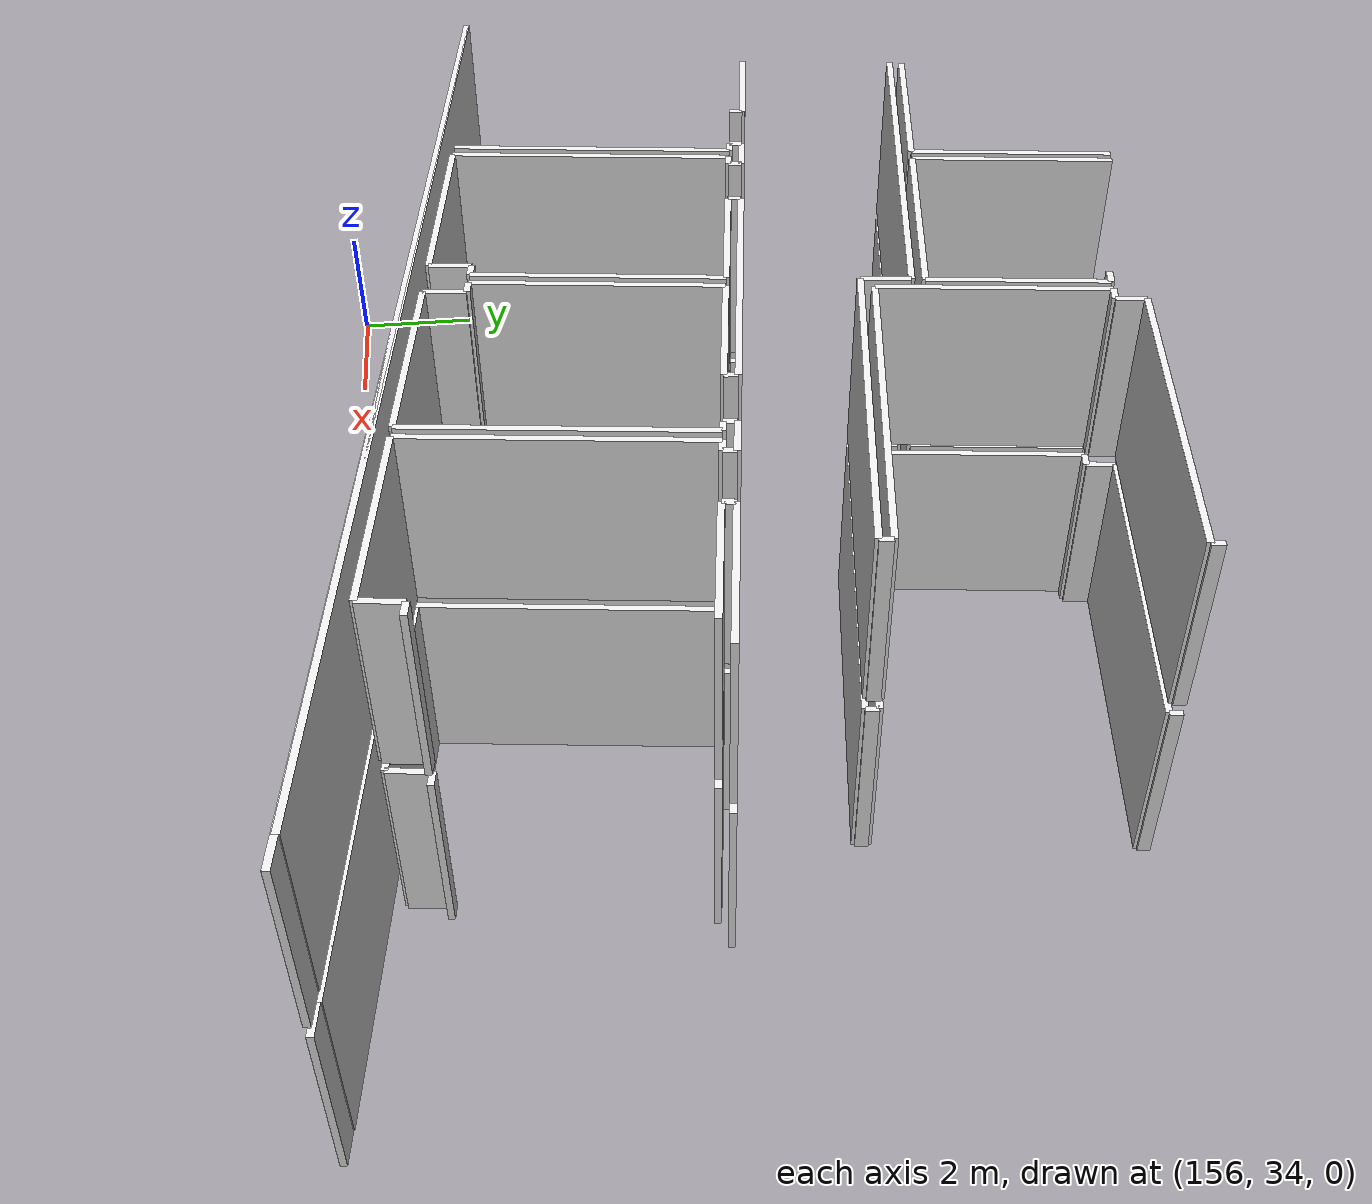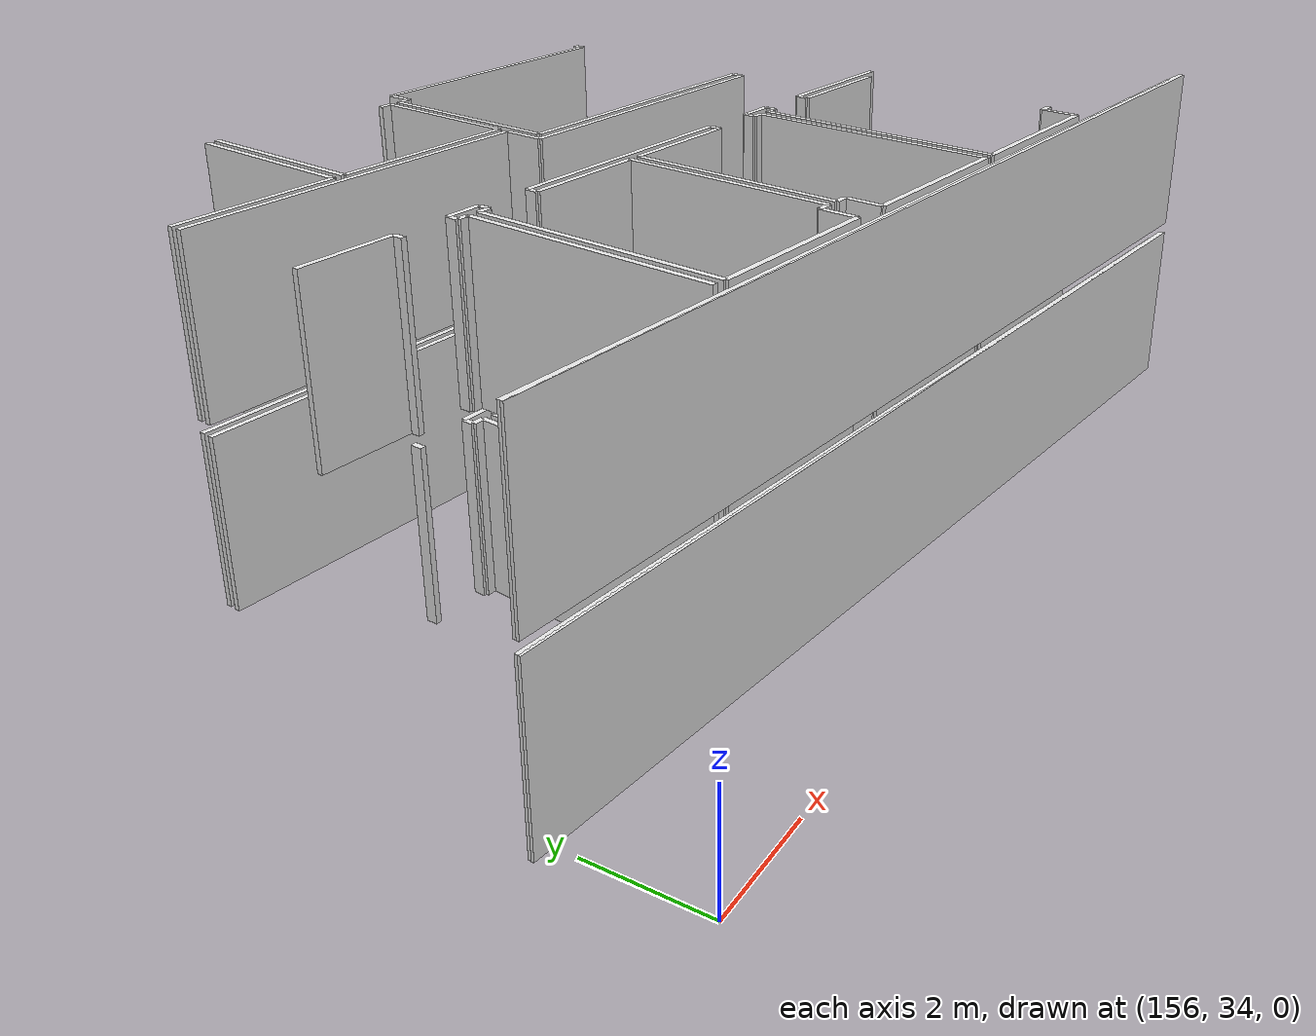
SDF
<sdf version="1.6">
 <world name="default">
  <model name="wall_166.9_37.6_0.0_link">
   <static>true</static>
   <pose>166.92499999998836 37.63000000012107 1.5 0 0 -1.690673321615393</pose>
   <link name="link">
    <visual name="visual">
     <geometry><box><size>4.4318055010582365 0.1 3</size></box></geometry>
     <material>
      <script><uri>file://media/materials/scripts/gazebo.material</uri><name>Gazebo/White</name></script>
     </material>
    </visual>
   </link>
  </model>
  <model name="wall_165.1_35.6_0.0_link">
   <static>true</static>
   <pose>165.1349999999802 35.61499999999069 1.5 0 0 3.0208710707011033</pose>
   <link name="link">
    <visual name="visual">
     <geometry><box><size>3.0723606558584717 0.1 3</size></box></geometry>
     <material>
      <script><uri>file://media/materials/scripts/gazebo.material</uri><name>Gazebo/White</name></script>
     </material>
    </visual>
   </link>
  </model>
  <model name="wall_163.6_36.1_0.0_link">
   <static>true</static>
   <pose>163.64499999998952 36.11999999987893 1.5 0 0 1.4618543698162652</pose>
   <link name="link">
    <visual name="visual">
     <geometry><box><size>0.6438167442431666 0.1 3</size></box></geometry>
     <material>
      <script><uri>file://media/materials/scripts/gazebo.material</uri><name>Gazebo/White</name></script>
     </material>
    </visual>
   </link>
  </model>
  <model name="wall_163.6_36.5_0.0_link">
   <static>true</static>
   <pose>163.57000000000698 36.455000000074506 1.5 0 0 3.00606493842361</pose>
   <link name="link">
    <visual name="visual">
     <geometry><box><size>0.2220360331192952 0.1 3</size></box></geometry>
     <material>
      <script><uri>file://media/materials/scripts/gazebo.material</uri><name>Gazebo/White</name></script>
     </material>
    </visual>
   </link>
  </model>
  <model name="wall_163.7_38.3_0.0_link">
   <static>true</static>
   <pose>163.69000000000233 38.34500000020489 1.5 0 0 1.44873942407576</pose>
   <link name="link">
    <visual name="visual">
     <geometry><box><size>3.7781079920994487 0.1 3</size></box></geometry>
     <material>
      <script><uri>file://media/materials/scripts/gazebo.material</uri><name>Gazebo/White</name></script>
     </material>
    </visual>
   </link>
  </model>
  <model name="wall_165.0_40.1_0.0_link">
   <static>true</static>
   <pose>164.9649999999965 40.09500000020489 1.5 0 0 -0.11905156754423915</pose>
   <link name="link">
    <visual name="visual">
     <geometry><box><size>2.1048990474859015 0.1 3</size></box></geometry>
     <material>
      <script><uri>file://media/materials/scripts/gazebo.material</uri><name>Gazebo/White</name></script>
     </material>
    </visual>
   </link>
  </model>
  <model name="wall_167.1_39.8_0.0_link">
   <static>true</static>
   <pose>167.09500000000116 39.84000000008382 1.5 0 0 -0.10487693882591773</pose>
   <link name="link">
    <visual name="visual">
     <geometry><box><size>0.19104973174969345 0.1 3</size></box></geometry>
     <material>
      <script><uri>file://media/materials/scripts/gazebo.material</uri><name>Gazebo/White</name></script>
     </material>
    </visual>
   </link>
  </model>
  <model name="wall_162.7_40.4_0.0_link">
   <static>true</static>
   <pose>162.67499999998836 40.375 1.5 0 0 3.0225410860422697</pose>
   <link name="link">
    <visual name="visual">
     <geometry><box><size>2.104899047428106 0.1 3</size></box></geometry>
     <material>
      <script><uri>file://media/materials/scripts/gazebo.material</uri><name>Gazebo/White</name></script>
     </material>
    </visual>
   </link>
  </model>
  <model name="wall_160.5_40.6_0.0_link">
   <static>true</static>
   <pose>160.54000000000815 40.63000000012107 1.5 0 0 3.0419240010121844</pose>
   <link name="link">
    <visual name="visual">
     <geometry><box><size>0.20099751243585498 0.1 3</size></box></geometry>
     <material>
      <script><uri>file://media/materials/scripts/gazebo.material</uri><name>Gazebo/White</name></script>
     </material>
    </visual>
   </link>
  </model>
  <model name="wall_160.2_38.4_0.0_link">
   <static>true</static>
   <pose>160.17499999998836 38.44000000017695 1.5 0 0 -1.690673321615393</pose>
   <link name="link">
    <visual name="visual">
     <geometry><box><size>4.4318055010582365 0.1 3</size></box></geometry>
     <material>
      <script><uri>file://media/materials/scripts/gazebo.material</uri><name>Gazebo/White</name></script>
     </material>
    </visual>
   </link>
  </model>
  <model name="wall_161.4_36.1_0.0_link">
   <static>true</static>
   <pose>161.43499999999767 36.06000000005588 1.5 0 0 -0.11748918977593945</pose>
   <link name="link">
    <visual name="visual">
     <geometry><box><size>3.071172414652986 0.1 3</size></box></geometry>
     <material>
      <script><uri>file://media/materials/scripts/gazebo.material</uri><name>Gazebo/White</name></script>
     </material>
    </visual>
   </link>
  </model>
  <model name="wall_163.0_36.2_0.0_link">
   <static>true</static>
   <pose>163.0 36.199999999953434 1.5 0 0 1.4464413323376855</pose>
   <link name="link">
    <visual name="visual">
     <geometry><box><size>0.6449806199880641 0.1 3</size></box></geometry>
     <material>
      <script><uri>file://media/materials/scripts/gazebo.material</uri><name>Gazebo/White</name></script>
     </material>
    </visual>
   </link>
  </model>
  <model name="wall_163.1_36.5_0.0_link">
   <static>true</static>
   <pose>163.14999999999418 36.50500000012107 1.5 0 0 -0.13552771305276134</pose>
   <link name="link">
    <visual name="visual">
     <geometry><box><size>0.22203603311405212 0.1 3</size></box></geometry>
     <material>
      <script><uri>file://media/materials/scripts/gazebo.material</uri><name>Gazebo/White</name></script>
     </material>
    </visual>
   </link>
  </model>
  <model name="wall_163.5_38.4_0.0_link">
   <static>true</static>
   <pose>163.4899999999907 38.37000000011176 1.5 0 0 1.4490608416488255</pose>
   <link name="link">
    <visual name="visual">
     <geometry><box><size>3.7880337905415886 0.1 3</size></box></geometry>
     <material>
      <script><uri>file://media/materials/scripts/gazebo.material</uri><name>Gazebo/White</name></script>
     </material>
    </visual>
   </link>
  </model>
  <model name="wall_170.1_35.7_0.0_link">
   <static>true</static>
   <pose>170.10499999998137 35.66500000003725 1.5 0 0 3.0118901153086775</pose>
   <link name="link">
    <visual name="visual">
     <geometry><box><size>0.23194827011012187 0.1 3</size></box></geometry>
     <material>
      <script><uri>file://media/materials/scripts/gazebo.material</uri><name>Gazebo/White</name></script>
     </material>
    </visual>
   </link>
  </model>
  <model name="wall_169.9_35.4_0.0_link">
   <static>true</static>
   <pose>169.94999999998254 35.360000000102445 1.5 0 0 -1.695151321341658</pose>
   <link name="link">
    <visual name="visual">
     <geometry><box><size>0.6449806199952839 0.1 3</size></box></geometry>
     <material>
      <script><uri>file://media/materials/scripts/gazebo.material</uri><name>Gazebo/White</name></script>
     </material>
    </visual>
   </link>
  </model>
  <model name="wall_168.4_35.2_0.0_link">
   <static>true</static>
   <pose>168.3849999999802 35.22500000009313 1.5 0 0 3.020871070550642</pose>
   <link name="link">
    <visual name="visual">
     <geometry><box><size>3.0723606559145504 0.1 3</size></box></geometry>
     <material>
      <script><uri>file://media/materials/scripts/gazebo.material</uri><name>Gazebo/White</name></script>
     </material>
    </visual>
   </link>
  </model>
  <model name="wall_167.1_37.6_0.0_link">
   <static>true</static>
   <pose>167.125 37.60499999998137 1.5 0 0 1.4506488810357367</pose>
   <link name="link">
    <visual name="visual">
     <geometry><box><size>4.421877428998444 0.1 3</size></box></geometry>
     <material>
      <script><uri>file://media/materials/scripts/gazebo.material</uri><name>Gazebo/White</name></script>
     </material>
    </visual>
   </link>
  </model>
  <model name="wall_167.5_39.8_0.0_link">
   <static>true</static>
   <pose>167.49499999999534 39.78999999980442 1.5 0 0 -0.09495170644739931</pose>
   <link name="link">
    <visual name="visual">
     <geometry><box><size>0.21095023106197072 0.1 3</size></box></geometry>
     <material>
      <script><uri>file://media/materials/scripts/gazebo.material</uri><name>Gazebo/White</name></script>
     </material>
    </visual>
   </link>
  </model>
  <model name="wall_169.6_39.5_0.0_link">
   <static>true</static>
   <pose>169.63000000000466 39.53500000014901 1.5 0 0 -0.11961849947817037</pose>
   <link name="link">
    <visual name="visual">
     <geometry><box><size>2.094970166810415 0.1 3</size></box></geometry>
     <material>
      <script><uri>file://media/materials/scripts/gazebo.material</uri><name>Gazebo/White</name></script>
     </material>
    </visual>
   </link>
  </model>
  <model name="wall_170.0_45.8_0.0_link">
   <static>true</static>
   <pose>170.0 45.764999999897555 1.5 0 0 1.4659193879370842</pose>
   <link name="link">
    <visual name="visual">
     <geometry><box><size>0.19104973169180559 0.1 3</size></box></geometry>
     <material>
      <script><uri>file://media/materials/scripts/gazebo.material</uri><name>Gazebo/White</name></script>
     </material>
    </visual>
   </link>
  </model>
  <model name="wall_166.8_42.1_0.0_link">
   <static>true</static>
   <pose>166.8399999999965 42.07000000006519 1.5 0 0 3.0223114162191558</pose>
   <link name="link">
    <visual name="visual">
     <geometry><box><size>5.378215317411569 0.1 3</size></box></geometry>
     <material>
      <script><uri>file://media/materials/scripts/gazebo.material</uri><name>Gazebo/White</name></script>
     </material>
    </visual>
   </link>
  </model>
  <model name="wall_164.4_44.1_0.0_link">
   <static>true</static>
   <pose>164.38000000000466 44.12000000011176 1.5 0 0 1.4500000360731269</pose>
   <link name="link">
    <visual name="visual">
     <geometry><box><size>3.4853981120924216 0.1 3</size></box></geometry>
     <material>
      <script><uri>file://media/materials/scripts/gazebo.material</uri><name>Gazebo/White</name></script>
     </material>
    </visual>
   </link>
  </model>
  <model name="wall_164.7_45.8_0.0_link">
   <static>true</static>
   <pose>164.7050000000163 45.83499999996275 1.5 0 0 -0.12970253828111597</pose>
   <link name="link">
    <visual name="visual">
     <geometry><box><size>0.23194827011012187 0.1 3</size></box></geometry>
     <material>
      <script><uri>file://media/materials/scripts/gazebo.material</uri><name>Gazebo/White</name></script>
     </material>
    </visual>
   </link>
  </model>
  <model name="wall_164.8_46.0_0.0_link">
   <static>true</static>
   <pose>164.84500000000116 46.049999999813735 1.5 0 0 1.4625257359507529</pose>
   <link name="link">
    <visual name="visual">
     <geometry><box><size>0.46270941201207827 0.1 3</size></box></geometry>
     <material>
      <script><uri>file://media/materials/scripts/gazebo.material</uri><name>Gazebo/White</name></script>
     </material>
    </visual>
   </link>
  </model>
  <model name="wall_167.4_46.0_0.0_link">
   <static>true</static>
   <pose>167.42999999999302 45.9749999998603 1.5 0 0 -0.11858166439217471</pose>
   <link name="link">
    <visual name="visual">
     <geometry><box><size>5.156209848308469 0.1 3</size></box></geometry>
     <material>
      <script><uri>file://media/materials/scripts/gazebo.material</uri><name>Gazebo/White</name></script>
     </material>
    </visual>
   </link>
  </model>
  <model name="wall_160.8_45.2_0.0_link">
   <static>true</static>
   <pose>160.77499999999418 45.16500000003725 1.5 0 0 -1.6932095761983161</pose>
   <link name="link">
    <visual name="visual">
     <geometry><box><size>3.193900436690713 0.1 3</size></box></geometry>
     <material>
      <script><uri>file://media/materials/scripts/gazebo.material</uri><name>Gazebo/White</name></script>
     </material>
    </visual>
   </link>
  </model>
  <model name="wall_159.2_43.8_0.0_link">
   <static>true</static>
   <pose>159.1700000000128 43.75 1.5 0 0 3.0216044435658165</pose>
   <link name="link">
    <visual name="visual">
     <geometry><box><size>2.840422503772646 0.1 3</size></box></geometry>
     <material>
      <script><uri>file://media/materials/scripts/gazebo.material</uri><name>Gazebo/White</name></script>
     </material>
    </visual>
   </link>
  </model>
  <model name="wall_161.0_45.1_0.0_link">
   <static>true</static>
   <pose>160.97000000000116 45.14500000001863 1.5 0 0 1.4514917943710839</pose>
   <link name="link">
    <visual name="visual">
     <geometry><box><size>3.1926947864596977 0.1 3</size></box></geometry>
     <material>
      <script><uri>file://media/materials/scripts/gazebo.material</uri><name>Gazebo/White</name></script>
     </material>
    </visual>
   </link>
  </model>
  <model name="wall_164.3_45.9_0.0_link">
   <static>true</static>
   <pose>164.27999999999884 45.88500000000931 1.5 0 0 -0.12435499368110904</pose>
   <link name="link">
    <visual name="visual">
     <geometry><box><size>0.24186773247205975 0.1 3</size></box></geometry>
     <material>
      <script><uri>file://media/materials/scripts/gazebo.material</uri><name>Gazebo/White</name></script>
     </material>
    </visual>
   </link>
  </model>
  <model name="wall_164.2_44.5_0.0_link">
   <static>true</static>
   <pose>164.23500000001513 44.515000000130385 1.5 0 0 -1.6919709595141523</pose>
   <link name="link">
    <visual name="visual">
     <geometry><box><size>2.73001831492187 0.1 3</size></box></geometry>
     <material>
      <script><uri>file://media/materials/scripts/gazebo.material</uri><name>Gazebo/White</name></script>
     </material>
    </visual>
   </link>
  </model>
  <model name="wall_162.4_43.4_0.0_link">
   <static>true</static>
   <pose>162.42500000001746 43.360000000102445 1.5 0 0 3.0206059098054316</pose>
   <link name="link">
    <visual name="visual">
     <geometry><box><size>3.3142269083132514 0.1 3</size></box></geometry>
     <material>
      <script><uri>file://media/materials/scripts/gazebo.material</uri><name>Gazebo/White</name></script>
     </material>
    </visual>
   </link>
  </model>
  <model name="wall_160.1_40.7_0.0_link">
   <static>true</static>
   <pose>160.13999999998487 40.67999999993481 1.5 0 0 -0.09966865257760905</pose>
   <link name="link">
    <visual name="visual">
     <geometry><box><size>0.20099751243585498 0.1 3</size></box></geometry>
     <material>
      <script><uri>file://media/materials/scripts/gazebo.material</uri><name>Gazebo/White</name></script>
     </material>
    </visual>
   </link>
  </model>
  <model name="wall_160.0_38.5_0.0_link">
   <static>true</static>
   <pose>159.97000000000116 38.46999999997206 1.5 0 0 -1.6929129367175275</pose>
   <link name="link">
    <visual name="visual">
     <geometry><box><size>4.433012519625655 0.1 3</size></box></geometry>
     <material>
      <script><uri>file://media/materials/scripts/gazebo.material</uri><name>Gazebo/White</name></script>
     </material>
    </visual>
   </link>
  </model>
  <model name="wall_166.7_41.9_0.0_link">
   <static>true</static>
   <pose>166.72000000000116 41.87999999988824 1.5 0 0 -0.11857471213006499</pose>
   <link name="link">
    <visual name="visual">
     <geometry><box><size>5.579175566332764 0.1 3</size></box></geometry>
     <material>
      <script><uri>file://media/materials/scripts/gazebo.material</uri><name>Gazebo/White</name></script>
     </material>
    </visual>
   </link>
  </model>
  <model name="wall_169.5_41.6_0.0_link">
   <static>true</static>
   <pose>169.5 41.64999999990687 1.5 0 0 1.4711276743037347</pose>
   <link name="link">
    <visual name="visual">
     <geometry><box><size>0.20099751260961132 0.1 3</size></box></geometry>
     <material>
      <script><uri>file://media/materials/scripts/gazebo.material</uri><name>Gazebo/White</name></script>
     </material>
    </visual>
   </link>
  </model>
  <model name="wall_169.9_39.7_0.0_link">
   <static>true</static>
   <pose>169.85500000001048 39.70999999996275 1.5 0 0 3.0207271763608894</pose>
   <link name="link">
    <visual name="visual">
     <geometry><box><size>2.4881519246295563 0.1 3</size></box></geometry>
     <material>
      <script><uri>file://media/materials/scripts/gazebo.material</uri><name>Gazebo/White</name></script>
     </material>
    </visual>
   </link>
  </model>
  <model name="wall_168.6_39.8_0.0_link">
   <static>true</static>
   <pose>168.60500000001048 39.76000000000931 1.5 0 0 -1.7196862744613206</pose>
   <link name="link">
    <visual name="visual">
     <geometry><box><size>0.20223748388077126 0.1 3</size></box></geometry>
     <material>
      <script><uri>file://media/materials/scripts/gazebo.material</uri><name>Gazebo/White</name></script>
     </material>
    </visual>
   </link>
  </model>
  <model name="wall_167.6_39.9_0.0_link">
   <static>true</static>
   <pose>167.60999999998603 39.87999999988824 1.5 0 0 1.4711276743037347</pose>
   <link name="link">
    <visual name="visual">
     <geometry><box><size>0.20099751260961132 0.1 3</size></box></geometry>
     <material>
      <script><uri>file://media/materials/scripts/gazebo.material</uri><name>Gazebo/White</name></script>
     </material>
    </visual>
   </link>
  </model>
  <model name="wall_167.3_40.0_0.0_link">
   <static>true</static>
   <pose>167.32000000000698 40.014999999897555 1.5 0 0 3.0254510269809813</pose>
   <link name="link">
    <visual name="visual">
     <geometry><box><size>0.6040695323790061 0.1 3</size></box></geometry>
     <material>
      <script><uri>file://media/materials/scripts/gazebo.material</uri><name>Gazebo/White</name></script>
     </material>
    </visual>
   </link>
  </model>
  <model name="wall_167.0_39.9_0.0_link">
   <static>true</static>
   <pose>167.0100000000093 39.949999999953434 1.5 0 0 -1.670464979516584</pose>
   <link name="link">
    <visual name="visual">
     <geometry><box><size>0.20099751214626105 0.1 3</size></box></geometry>
     <material>
      <script><uri>file://media/materials/scripts/gazebo.material</uri><name>Gazebo/White</name></script>
     </material>
    </visual>
   </link>
  </model>
  <model name="wall_166.0_40.1_0.0_link">
   <static>true</static>
   <pose>166.02000000001863 40.07000000006519 1.5 0 0 1.471127674073209</pose>
   <link name="link">
    <visual name="visual">
     <geometry><box><size>0.20099751214626105 0.1 3</size></box></geometry>
     <material>
      <script><uri>file://media/materials/scripts/gazebo.material</uri><name>Gazebo/White</name></script>
     </material>
    </visual>
   </link>
  </model>
  <model name="wall_163.8_40.4_0.0_link">
   <static>true</static>
   <pose>163.8400000000256 40.43500000005588 1.5 0 0 3.0211735397007757</pose>
   <link name="link">
    <visual name="visual">
     <geometry><box><size>4.41194968243261 0.1 3</size></box></geometry>
     <material>
      <script><uri>file://media/materials/scripts/gazebo.material</uri><name>Gazebo/White</name></script>
     </material>
    </visual>
   </link>
  </model>
  <model name="wall_161.6_40.6_0.0_link">
   <static>true</static>
   <pose>161.64000000001397 40.60000000009313 1.5 0 0 -1.6704649792860586</pose>
   <link name="link">
    <visual name="visual">
     <geometry><box><size>0.20099751260961132 0.1 3</size></box></geometry>
     <material>
      <script><uri>file://media/materials/scripts/gazebo.material</uri><name>Gazebo/White</name></script>
     </material>
    </visual>
   </link>
  </model>
  <model name="wall_160.6_40.7_0.0_link">
   <static>true</static>
   <pose>160.64999999999418 40.71999999997206 1.5 0 0 1.471127674361366</pose>
   <link name="link">
    <visual name="visual">
     <geometry><box><size>0.20099751214046915 0.1 3</size></box></geometry>
     <material>
      <script><uri>file://media/materials/scripts/gazebo.material</uri><name>Gazebo/White</name></script>
     </material>
    </visual>
   </link>
  </model>
  <model name="wall_160.4_40.9_0.0_link">
   <static>true</static>
   <pose>160.35999999998603 40.85499999998137 1.5 0 0 3.025451026215301</pose>
   <link name="link">
    <visual name="visual">
     <geometry><box><size>0.6040695324329671 0.1 3</size></box></geometry>
     <material>
      <script><uri>file://media/materials/scripts/gazebo.material</uri><name>Gazebo/White</name></script>
     </material>
    </visual>
   </link>
  </model>
  <model name="wall_160.0_40.8_0.0_link">
   <static>true</static>
   <pose>160.04999999998836 40.79000000003725 1.5 0 0 -1.6704649792860586</pose>
   <link name="link">
    <visual name="visual">
     <geometry><box><size>0.20099751260961132 0.1 3</size></box></geometry>
     <material>
      <script><uri>file://media/materials/scripts/gazebo.material</uri><name>Gazebo/White</name></script>
     </material>
    </visual>
   </link>
  </model>
  <model name="wall_159.1_40.9_0.0_link">
   <static>true</static>
   <pose>159.05999999999767 40.90999999991618 1.5 0 0 1.471127674073209</pose>
   <link name="link">
    <visual name="visual">
     <geometry><box><size>0.20099751214626105 0.1 3</size></box></geometry>
     <material>
      <script><uri>file://media/materials/scripts/gazebo.material</uri><name>Gazebo/White</name></script>
     </material>
    </visual>
   </link>
  </model>
  <model name="wall_160.9_43.3_0.0_link">
   <static>true</static>
   <pose>160.8849999999802 43.34000000008382 1.5 0 0 -0.11986634401243841</pose>
   <link name="link">
    <visual name="visual">
     <geometry><box><size>6.3556038265721595 0.1 3</size></box></geometry>
     <material>
      <script><uri>file://media/materials/scripts/gazebo.material</uri><name>Gazebo/White</name></script>
     </material>
    </visual>
   </link>
  </model>
  <model name="wall_164.0_42.6_0.0_link">
   <static>true</static>
   <pose>163.99499999999534 42.58499999996275 1.5 0 0 -1.6902252527703903</pose>
   <link name="link">
    <visual name="visual">
     <geometry><box><size>0.7553806987169667 0.1 3</size></box></geometry>
     <material>
      <script><uri>file://media/materials/scripts/gazebo.material</uri><name>Gazebo/White</name></script>
     </material>
    </visual>
   </link>
  </model>
  <model name="wall_164.5_35.4_0.0_link">
   <static>true</static>
   <pose>164.52499999999418 35.41500000003725 1.5 0 0 -0.11969610327774036</pose>
   <link name="link">
    <visual name="visual">
     <geometry><box><size>17.837628766185997 0.1 3</size></box></geometry>
     <material>
      <script><uri>file://media/materials/scripts/gazebo.material</uri><name>Gazebo/White</name></script>
     </material>
    </visual>
   </link>
  </model>
  <model name="wall_164.8_35.4_0.0_link">
   <static>true</static>
   <pose>164.7599999999802 35.37999999988824 1.5 0 0 3.0211661134919177</pose>
   <link name="link">
    <visual name="visual">
     <geometry><box><size>18.312629521741698 0.1 3</size></box></geometry>
     <material>
      <script><uri>file://media/materials/scripts/gazebo.material</uri><name>Gazebo/White</name></script>
     </material>
    </visual>
   </link>
  </model>
  <model name="wall_166.9_37.6_3.2_link">
   <static>true</static>
   <pose>166.92499999998836 37.63000000012107 4.7 0 0 -1.690673321615393</pose>
   <link name="link">
    <visual name="visual">
     <geometry><box><size>4.4318055010582365 0.1 3</size></box></geometry>
     <material>
      <script><uri>file://media/materials/scripts/gazebo.material</uri><name>Gazebo/White</name></script>
     </material>
    </visual>
   </link>
  </model>
  <model name="wall_165.1_35.6_3.2_link">
   <static>true</static>
   <pose>165.1349999999802 35.61499999999069 4.7 0 0 3.0208710707011033</pose>
   <link name="link">
    <visual name="visual">
     <geometry><box><size>3.0723606558584717 0.1 3</size></box></geometry>
     <material>
      <script><uri>file://media/materials/scripts/gazebo.material</uri><name>Gazebo/White</name></script>
     </material>
    </visual>
   </link>
  </model>
  <model name="wall_163.6_36.1_3.2_link">
   <static>true</static>
   <pose>163.64499999998952 36.11999999987893 4.7 0 0 1.4618543698162652</pose>
   <link name="link">
    <visual name="visual">
     <geometry><box><size>0.6438167442431666 0.1 3</size></box></geometry>
     <material>
      <script><uri>file://media/materials/scripts/gazebo.material</uri><name>Gazebo/White</name></script>
     </material>
    </visual>
   </link>
  </model>
  <model name="wall_163.6_36.5_3.2_link">
   <static>true</static>
   <pose>163.57000000000698 36.455000000074506 4.7 0 0 3.00606493842361</pose>
   <link name="link">
    <visual name="visual">
     <geometry><box><size>0.2220360331192952 0.1 3</size></box></geometry>
     <material>
      <script><uri>file://media/materials/scripts/gazebo.material</uri><name>Gazebo/White</name></script>
     </material>
    </visual>
   </link>
  </model>
  <model name="wall_163.7_38.3_3.2_link">
   <static>true</static>
   <pose>163.69000000000233 38.34500000020489 4.7 0 0 1.44873942407576</pose>
   <link name="link">
    <visual name="visual">
     <geometry><box><size>3.7781079920994487 0.1 3</size></box></geometry>
     <material>
      <script><uri>file://media/materials/scripts/gazebo.material</uri><name>Gazebo/White</name></script>
     </material>
    </visual>
   </link>
  </model>
  <model name="wall_165.0_40.1_3.2_link">
   <static>true</static>
   <pose>164.9649999999965 40.09500000020489 4.7 0 0 -0.11905156754423915</pose>
   <link name="link">
    <visual name="visual">
     <geometry><box><size>2.1048990474859015 0.1 3</size></box></geometry>
     <material>
      <script><uri>file://media/materials/scripts/gazebo.material</uri><name>Gazebo/White</name></script>
     </material>
    </visual>
   </link>
  </model>
  <model name="wall_167.1_39.8_3.2_link">
   <static>true</static>
   <pose>167.09500000000116 39.84000000008382 4.7 0 0 -0.10487693882591773</pose>
   <link name="link">
    <visual name="visual">
     <geometry><box><size>0.19104973174969345 0.1 3</size></box></geometry>
     <material>
      <script><uri>file://media/materials/scripts/gazebo.material</uri><name>Gazebo/White</name></script>
     </material>
    </visual>
   </link>
  </model>
  <model name="wall_162.7_40.4_3.2_link">
   <static>true</static>
   <pose>162.67499999998836 40.375 4.7 0 0 3.0225410860422697</pose>
   <link name="link">
    <visual name="visual">
     <geometry><box><size>2.104899047428106 0.1 3</size></box></geometry>
     <material>
      <script><uri>file://media/materials/scripts/gazebo.material</uri><name>Gazebo/White</name></script>
     </material>
    </visual>
   </link>
  </model>
  <model name="wall_160.5_40.6_3.2_link">
   <static>true</static>
   <pose>160.54000000000815 40.63000000012107 4.7 0 0 3.0419240010121844</pose>
   <link name="link">
    <visual name="visual">
     <geometry><box><size>0.20099751243585498 0.1 3</size></box></geometry>
     <material>
      <script><uri>file://media/materials/scripts/gazebo.material</uri><name>Gazebo/White</name></script>
     </material>
    </visual>
   </link>
  </model>
  <model name="wall_160.2_38.4_3.2_link">
   <static>true</static>
   <pose>160.17499999998836 38.44000000017695 4.7 0 0 -1.690673321615393</pose>
   <link name="link">
    <visual name="visual">
     <geometry><box><size>4.4318055010582365 0.1 3</size></box></geometry>
     <material>
      <script><uri>file://media/materials/scripts/gazebo.material</uri><name>Gazebo/White</name></script>
     </material>
    </visual>
   </link>
  </model>
  <model name="wall_161.4_36.1_3.2_link">
   <static>true</static>
   <pose>161.43499999999767 36.06000000005588 4.7 0 0 -0.11748918977593945</pose>
   <link name="link">
    <visual name="visual">
     <geometry><box><size>3.071172414652986 0.1 3</size></box></geometry>
     <material>
      <script><uri>file://media/materials/scripts/gazebo.material</uri><name>Gazebo/White</name></script>
     </material>
    </visual>
   </link>
  </model>
  <model name="wall_163.0_36.2_3.2_link">
   <static>true</static>
   <pose>163.0 36.199999999953434 4.7 0 0 1.4464413323376855</pose>
   <link name="link">
    <visual name="visual">
     <geometry><box><size>0.6449806199880641 0.1 3</size></box></geometry>
     <material>
      <script><uri>file://media/materials/scripts/gazebo.material</uri><name>Gazebo/White</name></script>
     </material>
    </visual>
   </link>
  </model>
  <model name="wall_163.1_36.5_3.2_link">
   <static>true</static>
   <pose>163.14999999999418 36.50500000012107 4.7 0 0 -0.13552771305276134</pose>
   <link name="link">
    <visual name="visual">
     <geometry><box><size>0.22203603311405212 0.1 3</size></box></geometry>
     <material>
      <script><uri>file://media/materials/scripts/gazebo.material</uri><name>Gazebo/White</name></script>
     </material>
    </visual>
   </link>
  </model>
  <model name="wall_163.5_38.4_3.2_link">
   <static>true</static>
   <pose>163.4899999999907 38.37000000011176 4.7 0 0 1.4490608416488255</pose>
   <link name="link">
    <visual name="visual">
     <geometry><box><size>3.7880337905415886 0.1 3</size></box></geometry>
     <material>
      <script><uri>file://media/materials/scripts/gazebo.material</uri><name>Gazebo/White</name></script>
     </material>
    </visual>
   </link>
  </model>
  <model name="wall_170.1_35.7_3.2_link">
   <static>true</static>
   <pose>170.10499999998137 35.66500000003725 4.7 0 0 3.0118901153086775</pose>
   <link name="link">
    <visual name="visual">
     <geometry><box><size>0.23194827011012187 0.1 3</size></box></geometry>
     <material>
      <script><uri>file://media/materials/scripts/gazebo.material</uri><name>Gazebo/White</name></script>
     </material>
    </visual>
   </link>
  </model>
  <model name="wall_169.9_35.4_3.2_link">
   <static>true</static>
   <pose>169.94999999998254 35.360000000102445 4.7 0 0 -1.695151321341658</pose>
   <link name="link">
    <visual name="visual">
     <geometry><box><size>0.6449806199952839 0.1 3</size></box></geometry>
     <material>
      <script><uri>file://media/materials/scripts/gazebo.material</uri><name>Gazebo/White</name></script>
     </material>
    </visual>
   </link>
  </model>
  <model name="wall_168.4_35.2_3.2_link">
   <static>true</static>
   <pose>168.3849999999802 35.22500000009313 4.7 0 0 3.020871070550642</pose>
   <link name="link">
    <visual name="visual">
     <geometry><box><size>3.0723606559145504 0.1 3</size></box></geometry>
     <material>
      <script><uri>file://media/materials/scripts/gazebo.material</uri><name>Gazebo/White</name></script>
     </material>
    </visual>
   </link>
  </model>
  <model name="wall_167.1_37.6_3.2_link">
   <static>true</static>
   <pose>167.125 37.60499999998137 4.7 0 0 1.4506488810357367</pose>
   <link name="link">
    <visual name="visual">
     <geometry><box><size>4.421877428998444 0.1 3</size></box></geometry>
     <material>
      <script><uri>file://media/materials/scripts/gazebo.material</uri><name>Gazebo/White</name></script>
     </material>
    </visual>
   </link>
  </model>
  <model name="wall_167.5_39.8_3.2_link">
   <static>true</static>
   <pose>167.49499999999534 39.78999999980442 4.7 0 0 -0.09495170644739931</pose>
   <link name="link">
    <visual name="visual">
     <geometry><box><size>0.21095023106197072 0.1 3</size></box></geometry>
     <material>
      <script><uri>file://media/materials/scripts/gazebo.material</uri><name>Gazebo/White</name></script>
     </material>
    </visual>
   </link>
  </model>
  <model name="wall_169.6_39.5_3.2_link">
   <static>true</static>
   <pose>169.63000000000466 39.53500000014901 4.7 0 0 -0.11961849947817037</pose>
   <link name="link">
    <visual name="visual">
     <geometry><box><size>2.094970166810415 0.1 3</size></box></geometry>
     <material>
      <script><uri>file://media/materials/scripts/gazebo.material</uri><name>Gazebo/White</name></script>
     </material>
    </visual>
   </link>
  </model>
  <model name="wall_170.0_45.8_3.2_link">
   <static>true</static>
   <pose>170.0 45.764999999897555 4.7 0 0 1.4659193879370842</pose>
   <link name="link">
    <visual name="visual">
     <geometry><box><size>0.19104973169180559 0.1 3</size></box></geometry>
     <material>
      <script><uri>file://media/materials/scripts/gazebo.material</uri><name>Gazebo/White</name></script>
     </material>
    </visual>
   </link>
  </model>
  <model name="wall_166.8_42.1_3.2_link">
   <static>true</static>
   <pose>166.8399999999965 42.07000000006519 4.7 0 0 3.0223114162191558</pose>
   <link name="link">
    <visual name="visual">
     <geometry><box><size>5.378215317411569 0.1 3</size></box></geometry>
     <material>
      <script><uri>file://media/materials/scripts/gazebo.material</uri><name>Gazebo/White</name></script>
     </material>
    </visual>
   </link>
  </model>
  <model name="wall_164.4_44.1_3.2_link">
   <static>true</static>
   <pose>164.38000000000466 44.12000000011176 4.7 0 0 1.4500000360731269</pose>
   <link name="link">
    <visual name="visual">
     <geometry><box><size>3.4853981120924216 0.1 3</size></box></geometry>
     <material>
      <script><uri>file://media/materials/scripts/gazebo.material</uri><name>Gazebo/White</name></script>
     </material>
    </visual>
   </link>
  </model>
  <model name="wall_164.7_45.8_3.2_link">
   <static>true</static>
   <pose>164.7050000000163 45.83499999996275 4.7 0 0 -0.12970253828111597</pose>
   <link name="link">
    <visual name="visual">
     <geometry><box><size>0.23194827011012187 0.1 3</size></box></geometry>
     <material>
      <script><uri>file://media/materials/scripts/gazebo.material</uri><name>Gazebo/White</name></script>
     </material>
    </visual>
   </link>
  </model>
  <model name="wall_164.8_46.0_3.2_link">
   <static>true</static>
   <pose>164.84500000000116 46.049999999813735 4.7 0 0 1.4625257359507529</pose>
   <link name="link">
    <visual name="visual">
     <geometry><box><size>0.46270941201207827 0.1 3</size></box></geometry>
     <material>
      <script><uri>file://media/materials/scripts/gazebo.material</uri><name>Gazebo/White</name></script>
     </material>
    </visual>
   </link>
  </model>
  <model name="wall_167.4_46.0_3.2_link">
   <static>true</static>
   <pose>167.42999999999302 45.9749999998603 4.7 0 0 -0.11858166439217471</pose>
   <link name="link">
    <visual name="visual">
     <geometry><box><size>5.156209848308469 0.1 3</size></box></geometry>
     <material>
      <script><uri>file://media/materials/scripts/gazebo.material</uri><name>Gazebo/White</name></script>
     </material>
    </visual>
   </link>
  </model>
  <model name="wall_160.8_45.2_3.2_link">
   <static>true</static>
   <pose>160.77499999999418 45.16500000003725 4.7 0 0 -1.6932095761983161</pose>
   <link name="link">
    <visual name="visual">
     <geometry><box><size>3.193900436690713 0.1 3</size></box></geometry>
     <material>
      <script><uri>file://media/materials/scripts/gazebo.material</uri><name>Gazebo/White</name></script>
     </material>
    </visual>
   </link>
  </model>
  <model name="wall_159.2_43.8_3.2_link">
   <static>true</static>
   <pose>159.1700000000128 43.75 4.7 0 0 3.0216044435658165</pose>
   <link name="link">
    <visual name="visual">
     <geometry><box><size>2.840422503772646 0.1 3</size></box></geometry>
     <material>
      <script><uri>file://media/materials/scripts/gazebo.material</uri><name>Gazebo/White</name></script>
     </material>
    </visual>
   </link>
  </model>
  <model name="wall_161.0_45.1_3.2_link">
   <static>true</static>
   <pose>160.97000000000116 45.14500000001863 4.7 0 0 1.4514917943710839</pose>
   <link name="link">
    <visual name="visual">
     <geometry><box><size>3.1926947864596977 0.1 3</size></box></geometry>
     <material>
      <script><uri>file://media/materials/scripts/gazebo.material</uri><name>Gazebo/White</name></script>
     </material>
    </visual>
   </link>
  </model>
  <model name="wall_164.3_45.9_3.2_link">
   <static>true</static>
   <pose>164.27999999999884 45.88500000000931 4.7 0 0 -0.12435499368110904</pose>
   <link name="link">
    <visual name="visual">
     <geometry><box><size>0.24186773247205975 0.1 3</size></box></geometry>
     <material>
      <script><uri>file://media/materials/scripts/gazebo.material</uri><name>Gazebo/White</name></script>
     </material>
    </visual>
   </link>
  </model>
  <model name="wall_164.2_44.5_3.2_link">
   <static>true</static>
   <pose>164.23500000001513 44.515000000130385 4.7 0 0 -1.6919709595141523</pose>
   <link name="link">
    <visual name="visual">
     <geometry><box><size>2.73001831492187 0.1 3</size></box></geometry>
     <material>
      <script><uri>file://media/materials/scripts/gazebo.material</uri><name>Gazebo/White</name></script>
     </material>
    </visual>
   </link>
  </model>
  <model name="wall_162.4_43.4_3.2_link">
   <static>true</static>
   <pose>162.42500000001746 43.360000000102445 4.7 0 0 3.0206059098054316</pose>
   <link name="link">
    <visual name="visual">
     <geometry><box><size>3.3142269083132514 0.1 3</size></box></geometry>
     <material>
      <script><uri>file://media/materials/scripts/gazebo.material</uri><name>Gazebo/White</name></script>
     </material>
    </visual>
   </link>
  </model>
  <model name="wall_160.1_40.7_3.2_link">
   <static>true</static>
   <pose>160.13999999998487 40.67999999993481 4.7 0 0 -0.09966865257760905</pose>
   <link name="link">
    <visual name="visual">
     <geometry><box><size>0.20099751243585498 0.1 3</size></box></geometry>
     <material>
      <script><uri>file://media/materials/scripts/gazebo.material</uri><name>Gazebo/White</name></script>
     </material>
    </visual>
   </link>
  </model>
  <model name="wall_160.0_38.5_3.2_link">
   <static>true</static>
   <pose>159.97000000000116 38.46999999997206 4.7 0 0 -1.6929129367175275</pose>
   <link name="link">
    <visual name="visual">
     <geometry><box><size>4.433012519625655 0.1 3</size></box></geometry>
     <material>
      <script><uri>file://media/materials/scripts/gazebo.material</uri><name>Gazebo/White</name></script>
     </material>
    </visual>
   </link>
  </model>
  <model name="wall_166.7_41.9_3.2_link">
   <static>true</static>
   <pose>166.72000000000116 41.87999999988824 4.7 0 0 -0.11857471213006499</pose>
   <link name="link">
    <visual name="visual">
     <geometry><box><size>5.579175566332764 0.1 3</size></box></geometry>
     <material>
      <script><uri>file://media/materials/scripts/gazebo.material</uri><name>Gazebo/White</name></script>
     </material>
    </visual>
   </link>
  </model>
  <model name="wall_169.5_41.6_3.2_link">
   <static>true</static>
   <pose>169.5 41.64999999990687 4.7 0 0 1.4711276743037347</pose>
   <link name="link">
    <visual name="visual">
     <geometry><box><size>0.20099751260961132 0.1 3</size></box></geometry>
     <material>
      <script><uri>file://media/materials/scripts/gazebo.material</uri><name>Gazebo/White</name></script>
     </material>
    </visual>
   </link>
  </model>
  <model name="wall_169.9_39.7_3.2_link">
   <static>true</static>
   <pose>169.85500000001048 39.70999999996275 4.7 0 0 3.0207271763608894</pose>
   <link name="link">
    <visual name="visual">
     <geometry><box><size>2.4881519246295563 0.1 3</size></box></geometry>
     <material>
      <script><uri>file://media/materials/scripts/gazebo.material</uri><name>Gazebo/White</name></script>
     </material>
    </visual>
   </link>
  </model>
  <model name="wall_168.6_39.8_3.2_link">
   <static>true</static>
   <pose>168.60500000001048 39.76000000000931 4.7 0 0 -1.7196862744613206</pose>
   <link name="link">
    <visual name="visual">
     <geometry><box><size>0.20223748388077126 0.1 3</size></box></geometry>
     <material>
      <script><uri>file://media/materials/scripts/gazebo.material</uri><name>Gazebo/White</name></script>
     </material>
    </visual>
   </link>
  </model>
  <model name="wall_167.6_39.9_3.2_link">
   <static>true</static>
   <pose>167.60999999998603 39.87999999988824 4.7 0 0 1.4711276743037347</pose>
   <link name="link">
    <visual name="visual">
     <geometry><box><size>0.20099751260961132 0.1 3</size></box></geometry>
     <material>
      <script><uri>file://media/materials/scripts/gazebo.material</uri><name>Gazebo/White</name></script>
     </material>
    </visual>
   </link>
  </model>
  <model name="wall_167.3_40.0_3.2_link">
   <static>true</static>
   <pose>167.32000000000698 40.014999999897555 4.7 0 0 3.0254510269809813</pose>
   <link name="link">
    <visual name="visual">
     <geometry><box><size>0.6040695323790061 0.1 3</size></box></geometry>
     <material>
      <script><uri>file://media/materials/scripts/gazebo.material</uri><name>Gazebo/White</name></script>
     </material>
    </visual>
   </link>
  </model>
  <model name="wall_167.0_39.9_3.2_link">
   <static>true</static>
   <pose>167.0100000000093 39.949999999953434 4.7 0 0 -1.670464979516584</pose>
   <link name="link">
    <visual name="visual">
     <geometry><box><size>0.20099751214626105 0.1 3</size></box></geometry>
     <material>
      <script><uri>file://media/materials/scripts/gazebo.material</uri><name>Gazebo/White</name></script>
     </material>
    </visual>
   </link>
  </model>
  <model name="wall_166.0_40.1_3.2_link">
   <static>true</static>
   <pose>166.02000000001863 40.07000000006519 4.7 0 0 1.471127674073209</pose>
   <link name="link">
    <visual name="visual">
     <geometry><box><size>0.20099751214626105 0.1 3</size></box></geometry>
     <material>
      <script><uri>file://media/materials/scripts/gazebo.material</uri><name>Gazebo/White</name></script>
     </material>
    </visual>
   </link>
  </model>
  <model name="wall_163.8_40.4_3.2_link">
   <static>true</static>
   <pose>163.8400000000256 40.43500000005588 4.7 0 0 3.0211735397007757</pose>
   <link name="link">
    <visual name="visual">
     <geometry><box><size>4.41194968243261 0.1 3</size></box></geometry>
     <material>
      <script><uri>file://media/materials/scripts/gazebo.material</uri><name>Gazebo/White</name></script>
     </material>
    </visual>
   </link>
  </model>
  <model name="wall_161.6_40.6_3.2_link">
   <static>true</static>
   <pose>161.64000000001397 40.60000000009313 4.7 0 0 -1.6704649792860586</pose>
   <link name="link">
    <visual name="visual">
     <geometry><box><size>0.20099751260961132 0.1 3</size></box></geometry>
     <material>
      <script><uri>file://media/materials/scripts/gazebo.material</uri><name>Gazebo/White</name></script>
     </material>
    </visual>
   </link>
  </model>
  <model name="wall_160.6_40.7_3.2_link">
   <static>true</static>
   <pose>160.64999999999418 40.71999999997206 4.7 0 0 1.471127674361366</pose>
   <link name="link">
    <visual name="visual">
     <geometry><box><size>0.20099751214046915 0.1 3</size></box></geometry>
     <material>
      <script><uri>file://media/materials/scripts/gazebo.material</uri><name>Gazebo/White</name></script>
     </material>
    </visual>
   </link>
  </model>
  <model name="wall_160.4_40.9_3.2_link">
   <static>true</static>
   <pose>160.35999999998603 40.85499999998137 4.7 0 0 3.025451026215301</pose>
   <link name="link">
    <visual name="visual">
     <geometry><box><size>0.6040695324329671 0.1 3</size></box></geometry>
     <material>
      <script><uri>file://media/materials/scripts/gazebo.material</uri><name>Gazebo/White</name></script>
     </material>
    </visual>
   </link>
  </model>
  <model name="wall_160.0_40.8_3.2_link">
   <static>true</static>
   <pose>160.04999999998836 40.79000000003725 4.7 0 0 -1.6704649792860586</pose>
   <link name="link">
    <visual name="visual">
     <geometry><box><size>0.20099751260961132 0.1 3</size></box></geometry>
     <material>
      <script><uri>file://media/materials/scripts/gazebo.material</uri><name>Gazebo/White</name></script>
     </material>
    </visual>
   </link>
  </model>
  <model name="wall_159.1_40.9_3.2_link">
   <static>true</static>
   <pose>159.05999999999767 40.90999999991618 4.7 0 0 1.471127674073209</pose>
   <link name="link">
    <visual name="visual">
     <geometry><box><size>0.20099751214626105 0.1 3</size></box></geometry>
     <material>
      <script><uri>file://media/materials/scripts/gazebo.material</uri><name>Gazebo/White</name></script>
     </material>
    </visual>
   </link>
  </model>
  <model name="wall_158.2_41.1_3.2_link">
   <static>true</static>
   <pose>158.25 41.109999999869615 4.7 0 0 3.0202406529081416</pose>
   <link name="link">
    <visual name="visual">
     <geometry><box><size>1.6521501142814858 0.1 3</size></box></geometry>
     <material>
      <script><uri>file://media/materials/scripts/gazebo.material</uri><name>Gazebo/White</name></script>
     </material>
    </visual>
   </link>
  </model>
  <model name="wall_160.9_43.3_3.2_link">
   <static>true</static>
   <pose>160.8849999999802 43.34000000008382 4.7 0 0 -0.11986634401243841</pose>
   <link name="link">
    <visual name="visual">
     <geometry><box><size>6.3556038265721595 0.1 3</size></box></geometry>
     <material>
      <script><uri>file://media/materials/scripts/gazebo.material</uri><name>Gazebo/White</name></script>
     </material>
    </visual>
   </link>
  </model>
  <model name="wall_164.0_42.6_3.2_link">
   <static>true</static>
   <pose>163.99499999999534 42.58499999996275 4.7 0 0 -1.6902252527703903</pose>
   <link name="link">
    <visual name="visual">
     <geometry><box><size>0.7553806987169667 0.1 3</size></box></geometry>
     <material>
      <script><uri>file://media/materials/scripts/gazebo.material</uri><name>Gazebo/White</name></script>
     </material>
    </visual>
   </link>
  </model>
  <model name="wall_164.5_35.4_3.2_link">
   <static>true</static>
   <pose>164.52499999999418 35.41500000003725 4.7 0 0 -0.11969610327774036</pose>
   <link name="link">
    <visual name="visual">
     <geometry><box><size>17.837628766185997 0.1 3</size></box></geometry>
     <material>
      <script><uri>file://media/materials/scripts/gazebo.material</uri><name>Gazebo/White</name></script>
     </material>
    </visual>
   </link>
  </model>
  <model name="wall_164.8_35.4_3.2_link">
   <static>true</static>
   <pose>164.7599999999802 35.37999999988824 4.7 0 0 3.0211661134919177</pose>
   <link name="link">
    <visual name="visual">
     <geometry><box><size>18.312629521741698 0.1 3</size></box></geometry>
     <material>
      <script><uri>file://media/materials/scripts/gazebo.material</uri><name>Gazebo/White</name></script>
     </material>
    </visual>
   </link>
  </model>
 </world>
</sdf>
